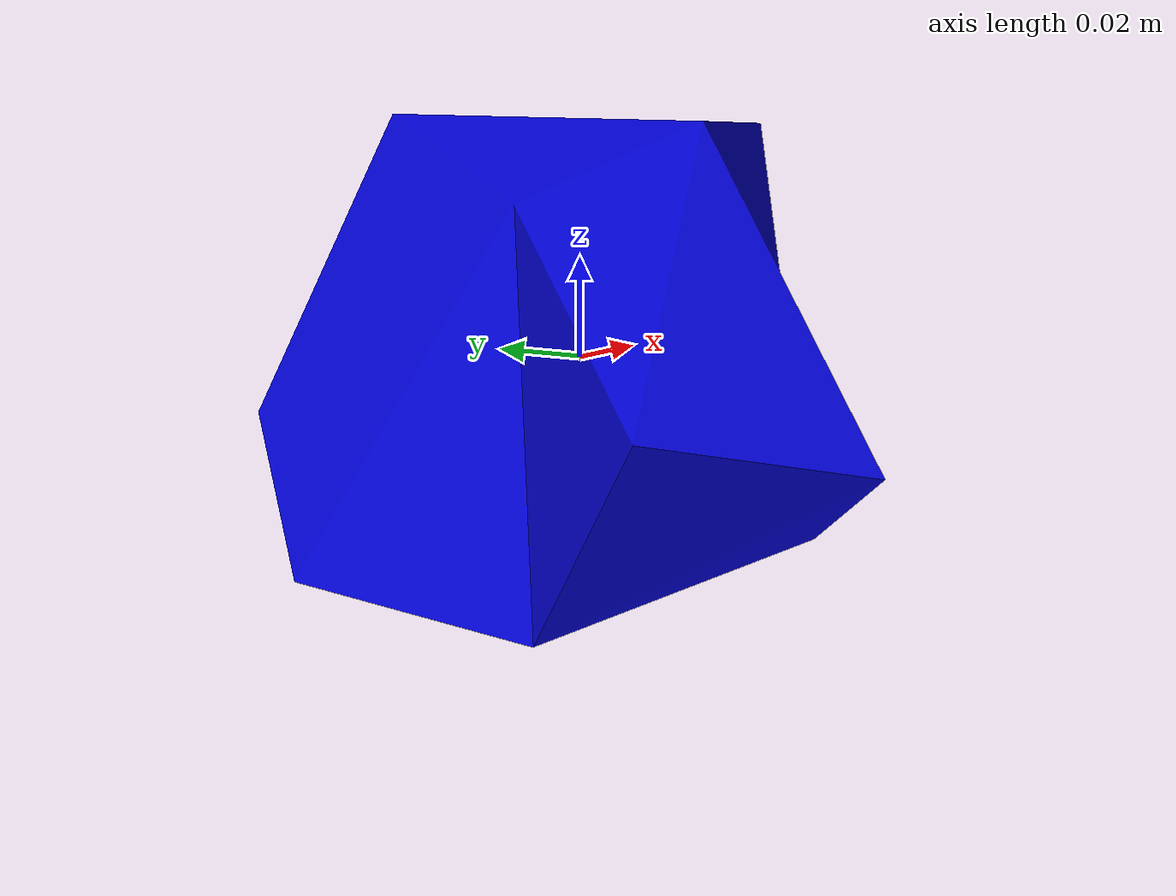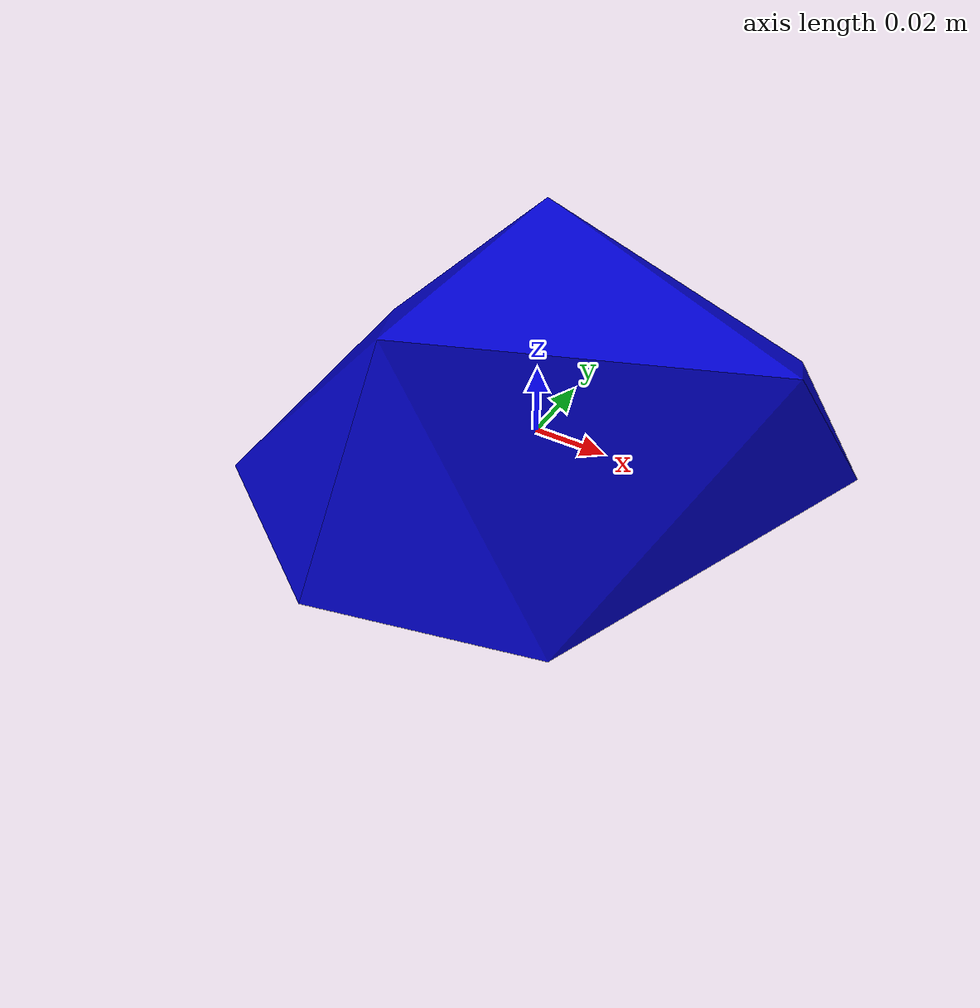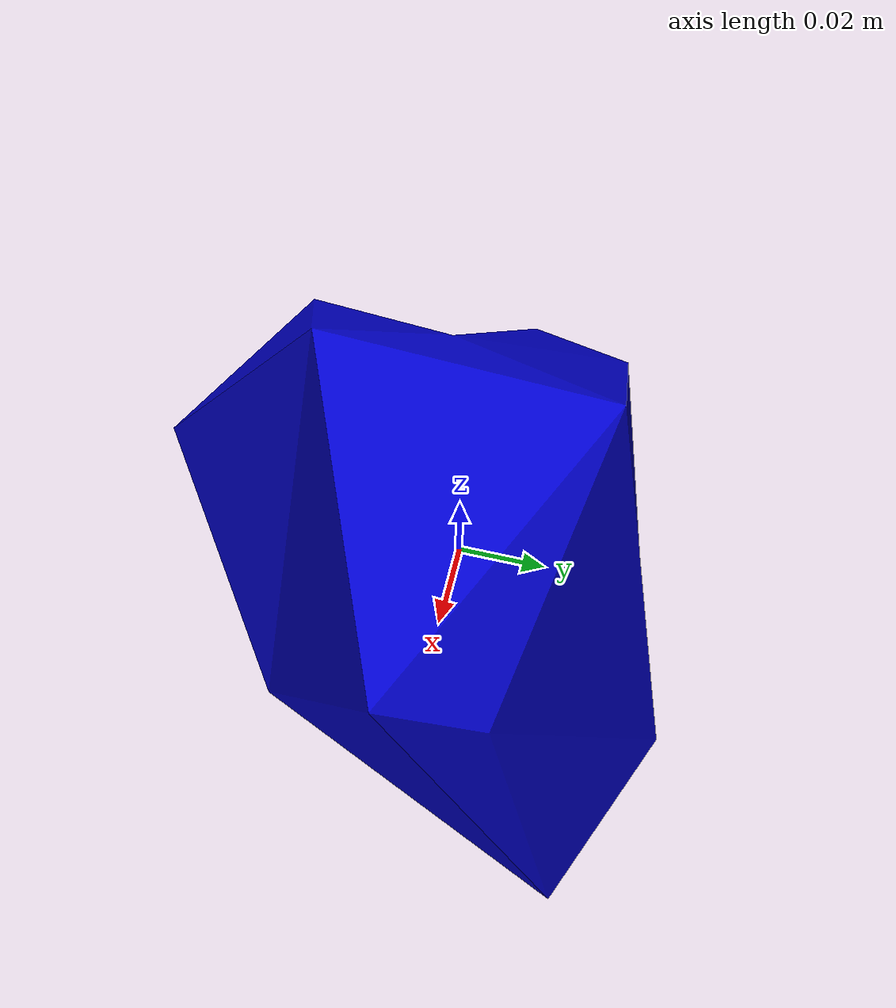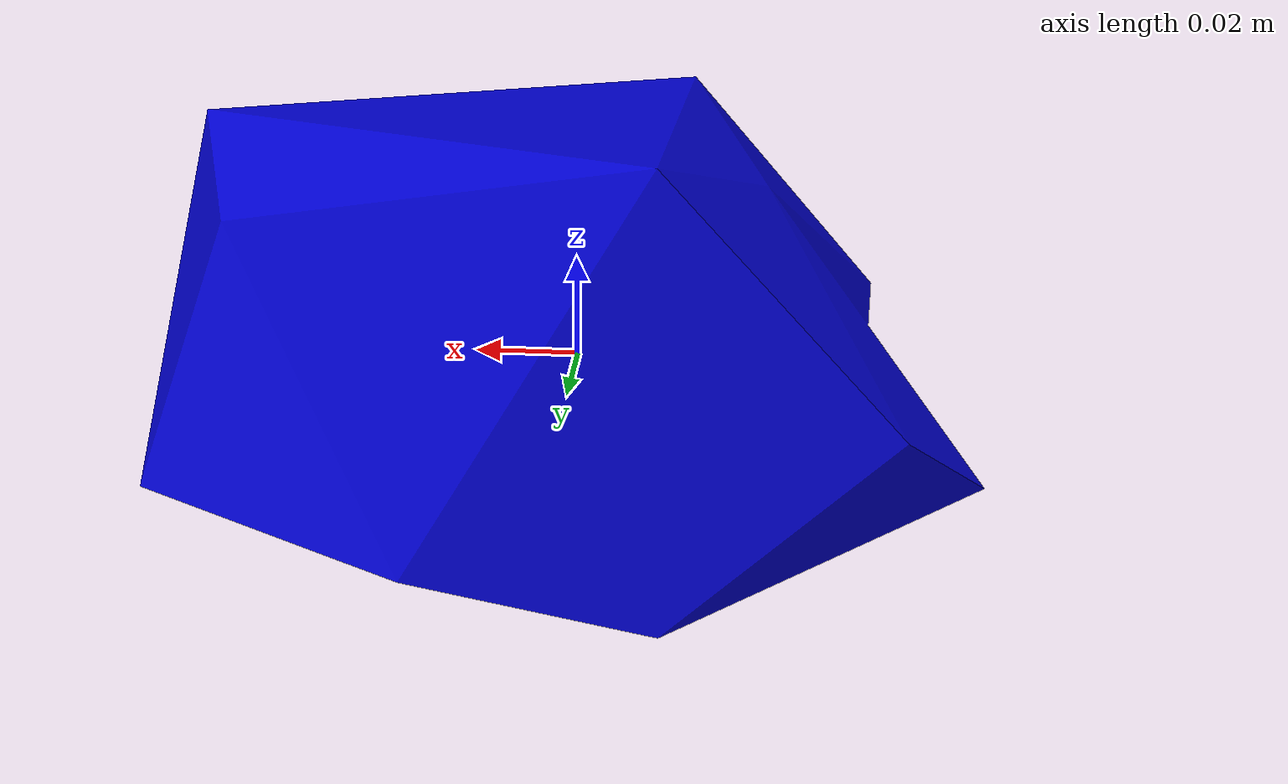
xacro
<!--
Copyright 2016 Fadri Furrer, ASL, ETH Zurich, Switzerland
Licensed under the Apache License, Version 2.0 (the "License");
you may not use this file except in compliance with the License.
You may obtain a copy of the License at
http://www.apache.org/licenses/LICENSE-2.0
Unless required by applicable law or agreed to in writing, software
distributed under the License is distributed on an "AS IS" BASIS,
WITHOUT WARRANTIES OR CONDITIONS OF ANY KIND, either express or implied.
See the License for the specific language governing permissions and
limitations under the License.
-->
<?xml version="1.0"?>

<robot name="1_poly" xmlns:xacro="http://ros.org/wiki/xacro">
  <xacro:property name="mesh_file" value="package://urdf_models/models/polygons/1_poly_config_2.dae" />
  <xacro:property name="mass" value="1.0" />
  <link name="base_link"></link>

  <joint name="base_joint" type="fixed">
    <origin xyz="0 0 0" rpy="0 0 0" />
    <parent link="base_link" />
    <child link="base_link_inertia" />
  </joint>
  <link name="base_link_inertia">
      <inertial>
        <mass value="${mass}" />  <!-- [kg] -->
        <origin xyz=" -0.012297e-1 -0.024539e-1  0.010432e-1 " />
        <inertia ixx="0.073099e-2" ixy="-0.014828e-2"  ixz="-0.010476e-2"
                			       iyy="0.099164e-2"   iyz="-0.002557e-2"
                 									   izz=" 0.107647e-2" />
      </inertial>

      <visual>
        <origin xyz="0 0 0" rpy="0 0 0" />
        <geometry>
          <mesh filename="${mesh_file}" scale="1 1 1" />
        </geometry>
	<material name="blue">
	  <color rgba="0 0 .8 1"/>
	</material>
      </visual>

      <collision>
        <origin xyz="0 0 0" rpy="0 0 0" />
        <geometry>
          <mesh filename="${mesh_file}" scale="1 1 1" />
        </geometry>
      </collision>
    </link>

   <gazebo reference="$base_link_inertia">
        <mu1>1.1</mu1>
        <mu2>1.1</mu2>
   </gazebo>

</robot>
